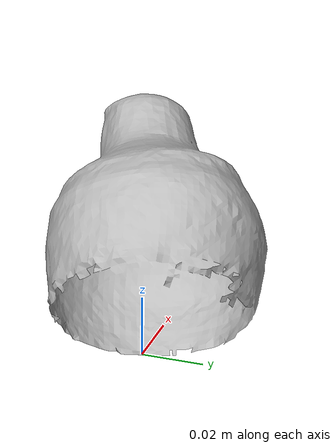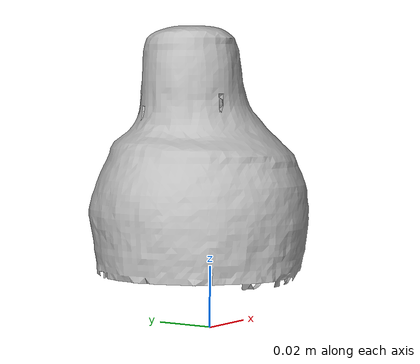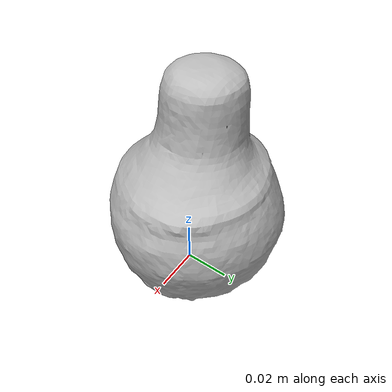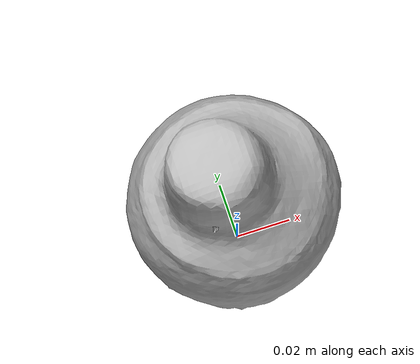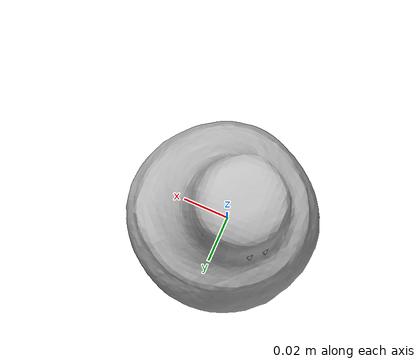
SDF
<?xml version="1.0" ?>
<sdf version="1.4">
  <model name="016_pear">
    <pose>0 0 0  0 0 0</pose>
    <link name="body">
      <inertial>
        <!-- Volume:  2.0352964800e-04 -->
        <mass> 1.0 </mass>
        <!-- Center of mass: -1.7230300000e-03  3.2448000000e-03  4.4083030000e-02 -->
        <pose> -1.7230300000e-03  3.2448000000e-03  4.4083030000e-02 0 0 0 </pose>
        <!-- Inertia matrix -->
        <inertia>
          <ixx>  6.2606458741e-04 </ixx>
          <ixy> -1.2686790477e-06 </ixy>
          <ixz>  2.7035779082e-05 </ixz>
          <iyy>  6.4076750872e-04 </iyy>
          <iyz>  1.0578620958e-06 </iyz>
          <izz>  4.7009251890e-04 </izz>
        </inertia>
      </inertial>
      <visual name="visual">
        <geometry>
          <mesh>
            <uri>model://016_pear/nontextured.stl</uri>
          </mesh>
        </geometry>
      </visual>
      <collision name="collision">
        <geometry>
          <mesh>
            <uri>model://016_pear/nontextured.stl</uri>
          </mesh>
        </geometry>
        <max_contacts>10</max_contacts>
        <surface>
          <friction>
            <ode>
              <mu>0.8</mu>
              <mu2>0.8</mu2>
              <slip1>0</slip1>
              <slip2>0</slip2>
            </ode>
            <torsional>
              <ode/>
            </torsional>
          </friction>
          <contact>
            <ode>
              <kp>1000000.0</kp>
              <kd>1.0</kd>
              <max_vel>0.0</max_vel>
            </ode>
          </contact>
        </surface>
      </collision>
    </link>
  </model>
</sdf>
